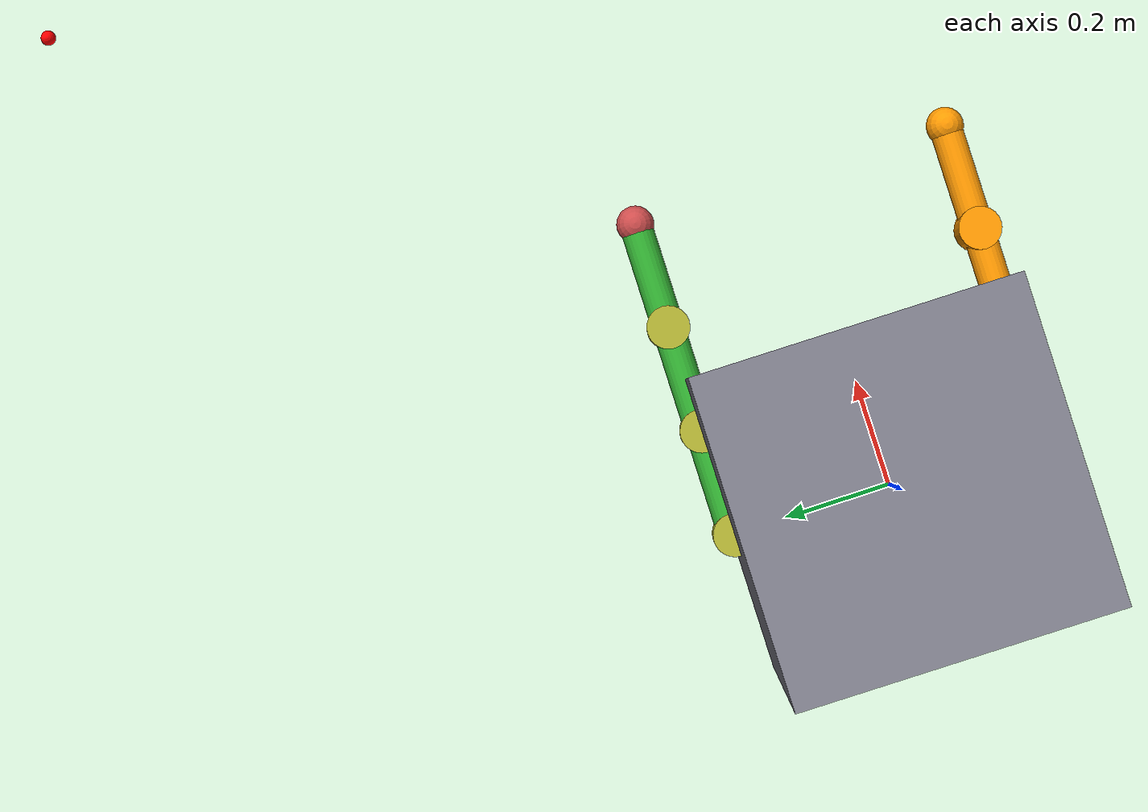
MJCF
<mujoco model="two_arm_space_robot_updated_inertia_symmetric">
  <compiler angle="radian" inertiafromgeom="false" texturedir="textures/" meshdir="meshes/"/>
  <option cone="elliptic" gravity="0 0 0" impratio="5" timestep="0.001" tolerance="1e-10" />
  <default>
    <geom density="0" contype="1" conaffinity="0"/>
    <joint type="hinge" axis="0 0 1" limited="true" range="-180 180" damping="0.1"/>
  </default>

  <asset>
    </asset>

  <worldbody>
    <body name="base" pos="0 0 0">
      <freejoint name="base_joint"/>
      <geom name="base_geom" type="box" size="0.3 0.3 0.3" rgba="0.5 0.5 0.55 1"/>
      <inertial pos="0 0 0" mass="10.0" diaginertia="1 1 1"/>

      <body name="arm1_link1" pos="0 0.3 0">
        <joint name="arm1_joint1" pos="0 0 0"/>
        <geom name="arm1_j1_housing" type="cylinder" size="0.04 0.03" pos="0 0 0" rgba="0.7 0.7 0.2 1"/>
        <geom name="arm1_l1_geom" type="cylinder" fromto="0 0 0 0.2 0 0" size="0.03" rgba="0.2 0.7 0.2 1"/>
        <inertial pos="0.1 0 0" mass="2.49" diaginertia="0.21 0.21 0.21"/>

        <body name="arm1_link2" pos="0.2 0 0">
          <joint name="arm1_joint2" pos="0 0 0"/>
          <geom name="arm1_j2_housing" type="cylinder" size="0.04 0.03" pos="0 0 0" rgba="0.7 0.7 0.2 1"/>
          <geom name="arm1_l2_geom" type="cylinder" fromto="0 0 0 0.2 0 0" size="0.03" rgba="0.2 0.7 0.2 1"/>
          <inertial pos="0.1 0 0" mass="2.49" diaginertia="0.21 0.21 0.21"/>

          <body name="arm1_link3" pos="0.2 0 0">
            <joint name="arm1_joint3" pos="0 0 0"/>
            <geom name="arm1_j3_housing" type="cylinder" size="0.04 0.03" pos="0 0 0" rgba="0.7 0.7 0.2 1"/>
            <geom name="arm1_l3_geom" type="cylinder" fromto="0 0 0 0.2 0 0" size="0.03" rgba="0.2 0.7 0.2 1"/>
            <inertial pos="0.1 0 0" mass="2.49" diaginertia="0.21 0.21 0.21"/>

            <body name="arm1_ee" pos="0.2 0 0">
              <geom type="sphere" size="0.035" rgba="0.8 0.3 0.3 1"/>
              <site name="end_effector" pos="0 0 0" size="0.01" rgba="0 1 0 1"/>
              <inertial pos="0 0 0" mass="0.1" diaginertia="0.00001 0.00001 0.00001"/>
            </body>
          </body>
        </body>
      </body>

      <body name="arm2_link1" pos="0 -0.3 0">
        <joint name="arm2_joint1" pos="0 0 0"/>
        <geom name="arm2_j1_housing" type="cylinder" size="0.04 0.03" pos="0 0 0" rgba="1.0 0.6 0.0 1"/> <geom name="arm2_l1_geom" type="cylinder" fromto="0 0 0 0.2 0 0" size="0.03" rgba="1.0 0.6 0.0 1"/> <inertial pos="0.1 0 0" mass="2.49" diaginertia="0.21 0.21 0.21"/>

        <body name="arm2_link2" pos="0.2 0 0">
          <joint name="arm2_joint2" pos="0 0 0"/>
          <geom name="arm2_j2_housing" type="cylinder" size="0.04 0.03" pos="0 0 0" rgba="1.0 0.6 0.0 1"/> <geom name="arm2_l2_geom" type="cylinder" fromto="0 0 0 0.2 0 0" size="0.03" rgba="1.0 0.6 0.0 1"/> <inertial pos="0.1 0 0" mass="2.49" diaginertia="0.21 0.21 0.21"/>

          <body name="arm2_link3" pos="0.2 0 0">
            <joint name="arm2_joint3" pos="0 0 0"/>
            <geom name="arm2_j3_housing" type="cylinder" size="0.04 0.03" pos="0 0 0" rgba="1.0 0.6 0.0 1"/> <geom name="arm2_l3_geom" type="cylinder" fromto="0 0 0 0.2 0 0" size="0.03" rgba="1.0 0.6 0.0 1"/> <inertial pos="0.1 0 0" mass="2.49" diaginertia="0.21 0.21 0.21"/>

            <body name="arm2_ee" pos="0.2 0 0">
              <geom type="sphere" size="0.035" rgba="1.0 0.6 0.0 1"/> <inertial pos="0 0 0" mass="0.1" diaginertia="0.00001 0.00001 0.00001"/>
            </body>
          </body>
        </body>
      </body>
    </body>
    <body name="anchor" pos="1.0 1.0 1.0">
      <site name="anchor_site" pos="0 0 0" size="0.01" rgba="1 0 0 1"/>
    </body>
  </worldbody>
  <equality>
    <weld site1="anchor_site" site2="end_effector" solref="0.001 0.99" solimp="0.99 0.99 0.001 0.001 0.5"/>
  </equality>

  <actuator>
    <motor joint="arm1_joint1" name="m1j1" ctrllimited="true" ctrlrange="-100 100"/>
    <motor joint="arm1_joint2" name="m1j2" ctrllimited="true" ctrlrange="-100 100"/>
    <motor joint="arm1_joint3" name="m1j3" ctrllimited="true" ctrlrange="-80 80"/>
    <motor joint="arm2_joint1" name="m2j1" ctrllimited="true" ctrlrange="-100 100"/>
    <motor joint="arm2_joint2" name="m2j2" ctrllimited="true" ctrlrange="-100 100"/>
    <motor joint="arm2_joint3" name="m2j3" ctrllimited="true" ctrlrange="-80 80"/>
  </actuator>

</mujoco>
